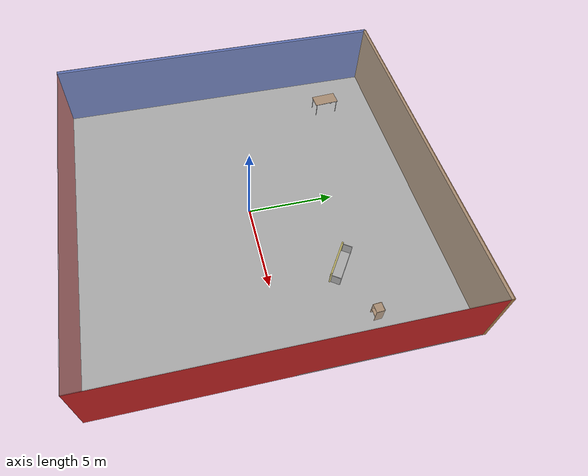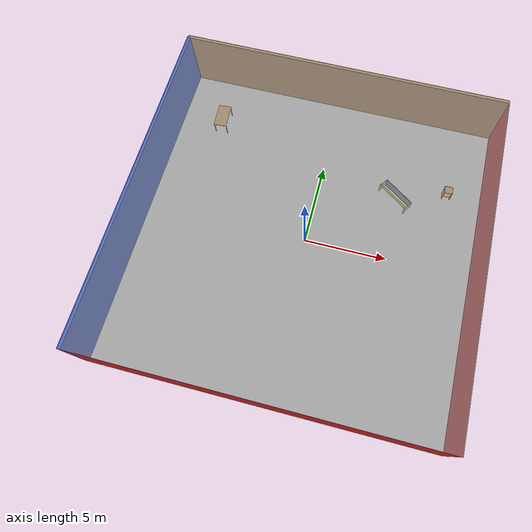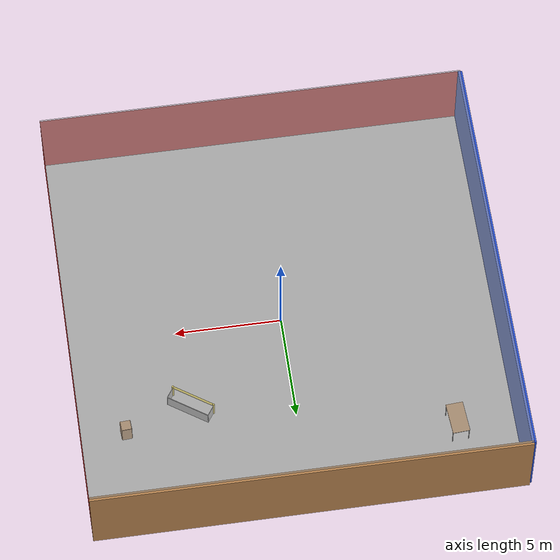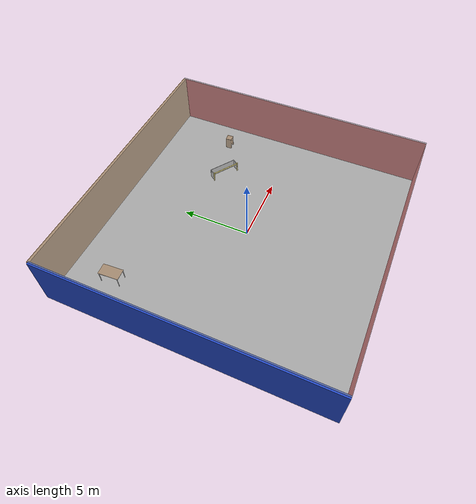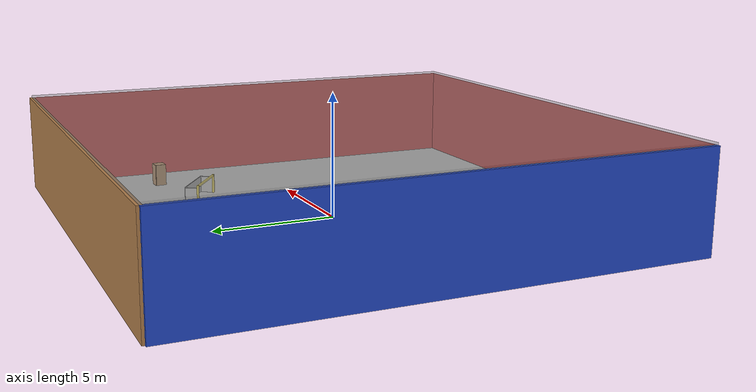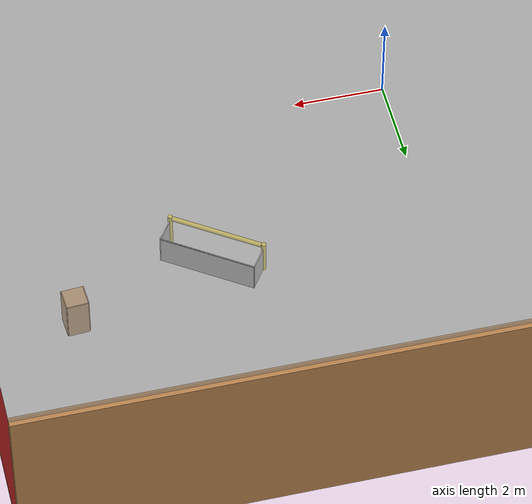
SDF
<sdf version="1.4">
 <world name="default">
  <physics type="ode">
   <max_step_size>0.001</max_step_size>
   <real_time_factor>1</real_time_factor>
   <real_time_update_rate>1000</real_time_update_rate>
   <gravity>0 0 -9.8</gravity>
  </physics>
  <scene><ambient>0.4 0.4 0.4 1</ambient><background>0.7 0.7 0.7 1</background><shadows>1</shadows></scene>
  <model name="Surrounding">
   <static>1</static>
   <link name="Ceiling">
    <collision name="Ceiling_Collision"><geometry><box><size>20 20 0.1</size></box></geometry></collision>
    <visual name="Ceiling_Visual">
     <geometry><box><size>20 20 0.1</size></box></geometry>
     <material>
      <script><uri>file://media/materials/scripts/gazebo.material</uri><name>Gazebo/GreyTransparent</name></script>
     </material>
    </visual>
    <pose>0 0 4.05 0 0 0</pose>
   </link>
   <link name="Wall_South">
    <collision name="Wall_South_Collision">
     <geometry><box><size>20 0 4</size></box></geometry>
     <pose>0 0 2 0 -0 0</pose>
    </collision>
    <visual name="Wall_South_Visual">
     <pose>0 0 2 0 -0 0</pose>
     <geometry><box><size>20 0 4</size></box></geometry>
     <material>
      <script><uri>file://media/materials/scripts/gazebo.material</uri><name>Gazebo/RedGlow</name></script>
     </material>
    </visual>
    <velocity_decay><linear>0</linear><angular>0</angular></velocity_decay>
    <pose>0 -10 0 0 -0 0</pose>
   </link>
   <link name="Wall_East">
    <collision name="Wall_21_Collision">
     <geometry><box><size>20 0 4</size></box></geometry>
     <pose>0 0 2 0 -0 0</pose>
    </collision>
    <visual name="Wall_21_Visual">
     <pose>0 0 2 0 -0 0</pose>
     <geometry><box><size>20 0 4</size></box></geometry>
     <material>
      <script><uri>file://media/materials/scripts/gazebo.material</uri><name>Gazebo/Red</name></script>
     </material>
    </visual>
    <velocity_decay><linear>0</linear><angular>0</angular></velocity_decay>
    <pose>10 0 0 0 -0 1.5708</pose>
   </link>
   <link name="Wall_North">
    <collision name="Wall_22_Collision">
     <geometry><box><size>20 0.2 4</size></box></geometry>
     <pose>0 0 2 0 -0 0</pose>
    </collision>
    <visual name="Wall_22_Visual">
     <pose>0 0 2 0 -0 0</pose>
     <geometry><box><size>20 0.2 4</size></box></geometry>
     <material>
      <script><uri>file://media/materials/scripts/gazebo.material</uri><name>Gazebo/Wood</name></script>
     </material>
    </visual>
    <velocity_decay><linear>0</linear><angular>0</angular></velocity_decay>
    <pose>0 10 0 0 -0 0</pose>
   </link>
   <link name="Wall_West">
    <collision name="Wall_23_Collision">
     <geometry><box><size>20 0.2 4</size></box></geometry>
     <pose>0 0 2 0 -0 0</pose>
    </collision>
    <visual name="Wall_23_Visual">
     <pose>0 0 2 0 -0 0</pose>
     <geometry><box><size>20 0.2 4</size></box></geometry>
     <material>
      <script><uri>file://media/materials/scripts/gazebo.material</uri><name>Gazebo/BlueGlow</name></script>
     </material>
    </visual>
    <velocity_decay><linear>0</linear><angular>0</angular></velocity_decay>
    <pose>-10 0 0 0 0 -1.5708</pose>
   </link>
   <link name="Ground_link">
    <collision name="collision">
     <pose>0 0 .05 0 -0 0</pose>
     <geometry><box><size>20 20 0.1</size></box></geometry>
    </collision>
    <visual name="visual">
     <pose>0 0 .05 0 -0 0</pose>
     <geometry><box><size>20 20 0.1</size></box></geometry>
     <material>
      <script><uri>file://media/materials/scripts/gazebo.material</uri><name>Gazebo/PioneerBody</name></script>
     </material>
    </visual>
   </link>
   <static>1</static>
  </model>
  <spherical_coordinates>
   <surface_model>EARTH_WGS84</surface_model>
   <latitude_deg>0</latitude_deg>
   <longitude_deg>0</longitude_deg>
   <elevation>0</elevation>
   <heading_deg>0</heading_deg>
  </spherical_coordinates>
  <light name="lightball_0" type="diffuse">
   <diffuse>0.8 0.8 0.8 1</diffuse>
   <specular>0.2 0.2 0.2 1</specular>
   <attenuation>
    <range>100</range>
    <constant>0.7</constant>
    <linear>0.01</linear>
    <quadratic>0.001</quadratic>
   </attenuation>
   <direction>-0.5 0.1 -0.9</direction>
   <pose>-0.0384410282205 -3.95610316073 3.29518596354 0 0 0</pose>
  </light>
  <light name="lightball_1" type="diffuse">
   <diffuse>0.8 0.8 0.8 1</diffuse>
   <specular>0.2 0.2 0.2 1</specular>
   <attenuation>
    <range>100</range>
    <constant>0.7</constant>
    <linear>0.01</linear>
    <quadratic>0.001</quadratic>
   </attenuation>
   <direction>-0.5 0.1 -0.9</direction>
   <pose>5.20833532179 -0.681886616288 2.42050134872 0 0 0</pose>
  </light>
  <light name="lightball_2" type="diffuse">
   <diffuse>0.8 0.8 0.8 1</diffuse>
   <specular>0.2 0.2 0.2 1</specular>
   <attenuation>
    <range>100</range>
    <constant>0.7</constant>
    <linear>0.01</linear>
    <quadratic>0.001</quadratic>
   </attenuation>
   <direction>-0.5 0.1 -0.9</direction>
   <pose>-3.26051507974 5.2485366578 2.021896704 0 0 0</pose>
  </light>
  <light name="lightball_3" type="diffuse">
   <diffuse>0.8 0.8 0.8 1</diffuse>
   <specular>0.2 0.2 0.2 1</specular>
   <attenuation>
    <range>100</range>
    <constant>0.7</constant>
    <linear>0.01</linear>
    <quadratic>0.001</quadratic>
   </attenuation>
   <direction>-0.5 0.1 -0.9</direction>
   <pose>-9.53423659473 -2.12065236867 3.89854217612 0 0 0</pose>
  </light>
  <light name="lightball_4" type="diffuse">
   <diffuse>0.8 0.8 0.8 1</diffuse>
   <specular>0.2 0.2 0.2 1</specular>
   <attenuation>
    <range>100</range>
    <constant>0.7</constant>
    <linear>0.01</linear>
    <quadratic>0.001</quadratic>
   </attenuation>
   <direction>-0.5 0.1 -0.9</direction>
   <pose>-5.18713716807 -3.2346045519 2.45844824913 0 0 0</pose>
  </light>
  <light name="lightball_5" type="diffuse">
   <diffuse>0.8 0.8 0.8 1</diffuse>
   <specular>0.2 0.2 0.2 1</specular>
   <attenuation>
    <range>100</range>
    <constant>0.7</constant>
    <linear>0.01</linear>
    <quadratic>0.001</quadratic>
   </attenuation>
   <direction>-0.5 0.1 -0.9</direction>
   <pose>6.79063838321 -6.26003935518 1.74707428654 0 0 0</pose>
  </light>
  <light name="lightball_6" type="diffuse">
   <diffuse>0.8 0.8 0.8 1</diffuse>
   <specular>0.2 0.2 0.2 1</specular>
   <attenuation>
    <range>100</range>
    <constant>0.7</constant>
    <linear>0.01</linear>
    <quadratic>0.001</quadratic>
   </attenuation>
   <direction>-0.5 0.1 -0.9</direction>
   <pose>0.423856207942 -9.81565628707 0.837063498963 0 0 0</pose>
  </light>
  <include><uri>model://table</uri><pose>-7.21470649467 6.73292833523 0 0 0 1.63685578849</pose></include>
  <include>
   <uri>model://robocup_3Dsim_goal</uri>
   <pose>4.61795787505 3.82322801519 0 0 0 0.969136539666</pose>
  </include>
  <include><uri>model://cabinet</uri><pose>7.86708829931 4.98057237676 0 0 0 1.63543428462</pose></include>
 </world>
</sdf>

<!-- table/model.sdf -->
<sdf version="1.5">
  <model name="table">
    <static>true</static>
    <link name="link">
      <collision name="surface">
        <pose>0 0 1.0 0 0 0</pose>
        <geometry>
          <box>
            <size>1.5 0.8 0.03</size>
          </box>
        </geometry>
        <surface>
          <friction>
            <ode>
              <mu>0.6</mu>
              <mu2>0.6</mu2>
            </ode>
          </friction>
        </surface>
      </collision>
      <visual name="visual1">
        <pose>0 0 1.0 0 0 0</pose>
        <geometry>
          <box>
            <size>1.5 0.8 0.03</size>
          </box>
        </geometry>
        <material>
          <script>
            <uri>model://media/materials/scripts/gazebo.material</uri>
            <name>Gazebo/Wood</name>
          </script>
        </material>
      </visual>
      <collision name="front_left_leg">
        <pose>0.68 0.38 0.5 0 0 0</pose>
        <geometry>
          <cylinder>
            <radius>0.02</radius>
            <length>1.0</length>
          </cylinder>
        </geometry>
      </collision>
      <visual name="front_left_leg">
        <pose>0.68 0.38 0.5 0 0 0</pose>
        <geometry>
          <cylinder>
            <radius>0.02</radius>
            <length>1.0</length>
          </cylinder>
        </geometry>
        <material>
          <script>
            <uri>model://media/materials/scripts/gazebo.material</uri>
            <name>Gazebo/Grey</name>
          </script>
        </material>
      </visual>
      <collision name="front_right_leg">
        <pose>0.68 -0.38 0.5 0 0 0</pose>
        <geometry>
          <cylinder>
            <radius>0.02</radius>
            <length>1.0</length>
          </cylinder>
        </geometry>
      </collision>
      <visual name="front_right_leg">
        <pose>0.68 -0.38 0.5 0 0 0</pose>
        <geometry>
          <cylinder>
            <radius>0.02</radius>
            <length>1.0</length>
          </cylinder>
        </geometry>
        <material>
          <script>
            <uri>model://media/materials/scripts/gazebo.material</uri>
            <name>Gazebo/Grey</name>
          </script>
        </material>
      </visual>
      <collision name="back_right_leg">
        <pose>-0.68 -0.38 0.5 0 0 0</pose>
        <geometry>
          <cylinder>
            <radius>0.02</radius>
            <length>1.0</length>
          </cylinder>
        </geometry>
      </collision>
      <visual name="back_right_leg">
        <pose>-0.68 -0.38 0.5 0 0 0</pose>
        <geometry>
          <cylinder>
            <radius>0.02</radius>
            <length>1.0</length>
          </cylinder>
        </geometry>
        <material>
          <script>
            <uri>model://media/materials/scripts/gazebo.material</uri>
            <name>Gazebo/Grey</name>
          </script>
        </material>
      </visual>
      <collision name="back_left_leg">
        <pose>-0.68 0.38 0.5 0 0 0</pose>
        <geometry>
          <cylinder>
            <radius>0.02</radius>
            <length>1.0</length>
          </cylinder>
        </geometry>
      </collision>
      <visual name="back_left_leg">
        <pose>-0.68 0.38 0.5 0 0 0</pose>
        <geometry>
          <cylinder>
            <radius>0.02</radius>
            <length>1.0</length>
          </cylinder>
        </geometry>
        <material>
          <script>
            <uri>model://media/materials/scripts/gazebo.material</uri>
            <name>Gazebo/Grey</name>
          </script>
        </material>
      </visual>
    </link>
  </model>
</sdf>

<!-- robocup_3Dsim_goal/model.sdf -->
<sdf version="1.5">
  <model name="robocup_3d_goal">
    <static>true</static>
    <link name="left_post">
      <pose>0 1.05 0.45 0 0 0</pose>
      <collision name="collision">
        <geometry>
          <cylinder>
            <radius>0.05</radius>
            <length>0.9</length>
          </cylinder>
        </geometry>
      </collision>
      <visual name="visual">
        <geometry>
          <cylinder>
            <radius>0.05</radius>
            <length>0.9</length>
          </cylinder>
        </geometry>
        <material>
          <script>
            <uri>file://media/materials/scripts/gazebo.material</uri>
            <name>Gazebo/ZincYellow</name>
          </script>
        </material>
      </visual>
    </link>
    <link name="left_support_horiz_lower">
      <pose>0.30 1.05 0.01 0 0 0</pose>
      <collision name="collision">
        <geometry>
          <box>
            <size>0.50 0.02 0.02</size>
          </box>
        </geometry>
      </collision>
      <visual name="visual">
        <geometry>
          <box>
            <size>0.50 0.02 0.02</size>
          </box>
        </geometry>
        <material>
          <script>
            <uri>file://media/materials/scripts/gazebo.material</uri>
            <name>Gazebo/White</name>
          </script>
        </material>
      </visual>
    </link>
    <link name="left_support_horiz_upper">
      <pose>0.30 1.05 0.79 0 0 0</pose>
      <collision name="collision">
        <geometry>
          <box>
            <size>0.50 0.02 0.02</size>
          </box>
        </geometry>
      </collision>
      <visual name="visual">
        <geometry>
          <box>
            <size>0.50 0.02 0.02</size>
          </box>
        </geometry>
        <material>
          <script>
            <uri>file://media/materials/scripts/gazebo.material</uri>
            <name>Gazebo/White</name>
          </script>
        </material>
      </visual>
    </link>
    <link name="left_support_vertical">
      <pose>0.56 1.05 0.4 0 1.5708 0</pose>
      <collision name="collision">
        <geometry>
          <box>
            <size>0.80 0.02 0.02</size>
          </box>
        </geometry>
      </collision>
      <visual name="visual">
        <geometry>
          <box>
            <size>0.80 0.02 0.02</size>
          </box>
        </geometry>
        <material>
          <script>
            <uri>file://media/materials/scripts/gazebo.material</uri>
            <name>Gazebo/White</name>
          </script>
        </material>
      </visual>
    </link>
    <link name="right_support_horiz_lower">
      <pose>0.30 -1.05 0.01 0 0 0</pose>
      <collision name="collision">
        <geometry>
          <box>
            <size>0.50 0.02 0.02</size>
          </box>
        </geometry>
      </collision>
      <visual name="visual">
        <geometry>
          <box>
            <size>0.50 0.02 0.02</size>
          </box>
        </geometry>
        <material>
          <script>
            <uri>file://media/materials/scripts/gazebo.material</uri>
            <name>Gazebo/White</name>
          </script>
        </material>
      </visual>
    </link>
    <link name="right_support_horiz_upper">
      <pose>0.30 -1.05 0.79 0 0 0</pose>
      <collision name="collision">
        <geometry>
          <box>
            <size>0.50 0.02 0.02</size>
          </box>
        </geometry>
      </collision>
      <visual name="visual">
        <geometry>
          <box>
            <size>0.50 0.02 0.02</size>
          </box>
        </geometry>
        <material>
          <script>
            <uri>file://media/materials/scripts/gazebo.material</uri>
            <name>Gazebo/White</name>
          </script>
        </material>
      </visual>
    </link>
    <link name="right_support_vertical">
      <pose>0.56 -1.05 0.4 0 1.5708 0</pose>
      <collision name="collision">
        <geometry>
          <box>
            <size>0.80 0.02 0.02</size>
          </box>
        </geometry>
      </collision>
      <visual name="visual">
        <geometry>
          <box>
            <size>0.80 0.02 0.02</size>
          </box>
        </geometry>
        <material>
          <script>
            <uri>file://media/materials/scripts/gazebo.material</uri>
            <name>Gazebo/White</name>
          </script>
        </material>
      </visual>
    </link>
    <link name="center_support_horiz_lower">
      <pose>0.56 0 0.01 0 1.5708 0</pose>
      <collision name="collision">
        <geometry>
          <box>
            <size>0.02 2.08 0.02</size>
          </box>
        </geometry>
      </collision>
      <visual name="visual">
        <geometry>
          <box>
            <size>0.02 2.08 0.02</size>
          </box>
        </geometry>
        <material>
          <script>
            <uri>file://media/materials/scripts/gazebo.material</uri>
            <name>Gazebo/White</name>
          </script>
        </material>
      </visual>
    </link>
    <link name="center_support_horiz_upper">
      <pose>0.56 0 0.79 0 1.5708 0</pose>
      <collision name="collision">
        <geometry>
          <box>
            <size>0.02 2.08 0.02</size>
          </box>
        </geometry>
      </collision>
      <visual name="visual">
        <geometry>
          <box>
            <size>0.02 2.08 0.02</size>
          </box>
        </geometry>
        <material>
          <script>
            <uri>file://media/materials/scripts/gazebo.material</uri>
            <name>Gazebo/White</name>
          </script>
        </material>
      </visual>
    </link>
    <link name="right_post">
      <pose>0 -1.05 0.45 0 0 0</pose>
      <collision name="collision">
        <geometry>
          <cylinder>
            <radius>0.05</radius>
            <length>0.9</length>
          </cylinder>
        </geometry>
      </collision>
      <visual name="visual">
        <geometry>
          <cylinder>
            <radius>0.05</radius>
            <length>0.9</length>
          </cylinder>
        </geometry>
        <material>
          <script>
            <uri>file://media/materials/scripts/gazebo.material</uri>
            <name>Gazebo/ZincYellow</name>
          </script>
        </material>
      </visual>
    </link>
    <link name="crossbar">
      <pose>0 0 0.85 1.57 1.57 0</pose>
      <collision name="collision">
        <geometry>
          <cylinder>
            <radius>0.05</radius>
            <length>2.0</length>
          </cylinder>
        </geometry>
      </collision>
      <visual name="visual">
        <geometry>
          <cylinder>
            <radius>0.05</radius>
            <length>2.0</length>
          </cylinder>
        </geometry>
        <material>
          <script>
            <uri>file://media/materials/scripts/gazebo.material</uri>
            <name>Gazebo/ZincYellow</name>
          </script>
        </material>
      </visual>
    </link>
    <link name="center_net">
      <pose>0.56 0 0.40 0 0 0</pose>
      <collision name="collision">
        <geometry>
          <box>
            <size>0.01 2.1 0.80</size>
          </box>
        </geometry>
      </collision>
      <visual name="visual">
        <geometry>
          <box>
            <size>0.01 2.1 0.80</size>
          </box>
        </geometry>
        <material>
          <script>
            <uri>model://../model_source/models/robocup09_spl_field/materials/scripts/</uri>
            <uri>model://../model_source/models/robocup09_spl_field/materials/textures/</uri>
            <name>RoboCup/Net</name>
          </script>
        </material>
      </visual>
    </link>
    <link name="left_net">
      <pose>0.30 1.05 0.40 0 0 0</pose>
      <collision name="collision">
        <geometry>
          <box>
            <size>0.50 0.01 0.76</size>
          </box>
        </geometry>
      </collision>
      <visual name="visual">
        <geometry>
          <box>
            <size>0.50 0.01 0.76</size>
          </box>
        </geometry>
        <material>
          <script>
            <uri>model://../model_source/models/robocup09_spl_field/materials/scripts/</uri>
            <uri>model://../model_source/models/robocup09_spl_field/materials/textures/</uri>
            <name>RoboCup/Net</name>
          </script>
        </material>
      </visual>
    </link>
    <link name="right_net">
      <pose>0.30 -1.05 0.40 0 0 0</pose>
      <collision name="collision">
        <geometry>
          <box>
            <size>0.50 0.01 0.76</size>
          </box>
        </geometry>
      </collision>
      <visual name="visual">
        <geometry>
          <box>
            <size>0.50 0.01 0.76</size>
          </box>
        </geometry>
        <material>
          <script>
            <uri>model://../model_source/models/robocup09_spl_field/materials/scripts/</uri>
            <uri>model://../model_source/models/robocup09_spl_field/materials/textures/</uri>
            <name>RoboCup/Net</name>
          </script>
        </material>
      </visual>
    </link>
  </model>
</sdf>

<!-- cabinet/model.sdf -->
<sdf version="1.5">
  <model name="cabinet">
    <static>true</static>
    <link name="cabinet_bottom_plate">
      <inertial>
        <pose>0 0 -1 0 0 0</pose>
        <inertia>
          <ixx>2.050000</ixx>
          <ixy>0</ixy>
          <ixz>0</ixz>
          <iyy>2.050000</iyy>
          <iyz>0</iyz>
          <izz>2.050000</izz>
        </inertia>
        <mass>25.000000</mass>
      </inertial>
      <collision name="cabinet_bottom_plate_geom">
        <pose>0 0 0.010000 0 0 0</pose>
        <geometry>
          <box>
            <size>0.450000 0.450000 0.020000</size>
          </box>
        </geometry>
      </collision>
      <visual name="cabinet_bottom_plate_geom_visual">
        <pose>0 0 0.010000 0 0 0</pose>
        <geometry>
          <box>
            <size>0.450000 0.450000 0.020000</size>
          </box>
        </geometry>
        <material>
          <script>
            <uri>model://media/materials/scripts/gazebo.material</uri>
            <name>Gazebo/Wood</name>
          </script>
        </material>
      </visual>
      <collision name="cabinet_bottom_plate_geom_cabinet_back_plate">
        <pose>0.235000 0 0.510000 0 0 0</pose>
        <geometry>
          <box>
            <size>0.020000 0.450000 1.020000</size>
          </box>
        </geometry>
      </collision>
      <visual name="cabinet_bottom_plate_geom_cabinet_back_plate_visual">
        <pose>0.235000 0 0.510000 0 0 0</pose>
        <geometry>
          <box>
            <size>0.020000 0.450000 1.020000</size>
          </box>
        </geometry>
        <material>
          <script>
            <uri>model://media/materials/scripts/gazebo.material</uri>
            <name>Gazebo/Wood</name>
          </script>
        </material>
      </visual>
      <collision name="cabinet_bottom_plate_geom_cabinet_left_plate">
        <pose>0 0.235000 0.510000 0 0 0</pose>
        <geometry>
          <box>
            <size>0.450000 0.020000 1.020000</size>
          </box>
        </geometry>
      </collision>
      <visual name="cabinet_bottom_plate_geom_cabinet_left_plate_visual">
        <pose>0 0.235000 0.510000 0 0 0</pose>
        <geometry>
          <box>
            <size>0.450000 0.020000 1.020000</size>
          </box>
        </geometry>
        <material>
          <script>
            <uri>model://media/materials/scripts/gazebo.material</uri>
            <name>Gazebo/Wood</name>
          </script>
        </material>
      </visual>
      <collision name="cabinet_bottom_plate_geom_cabinet_middle_plate">
        <pose>0 0 0.510000 0 0 0</pose>
        <geometry>
          <box>
            <size>0.450000 0.450000 0.020000</size>
          </box>
        </geometry>
      </collision>
      <visual name="cabinet_bottom_plate_geom_cabinet_middle_plate_visual">
        <pose>0 0 0.510000 0 0 0</pose>
        <geometry>
          <box>
            <size>0.450000 0.450000 0.020000</size>
          </box>
        </geometry>
        <material>
          <script>
            <uri>model://media/materials/scripts/gazebo.material</uri>
            <name>Gazebo/Wood</name>
          </script>
        </material>
      </visual>
      <collision name="cabinet_bottom_plate_geom_cabinet_right_plate">
        <pose>0 -0.235000 0.510000 0 0 0</pose>
        <geometry>
          <box>
            <size>0.450000 0.020000 1.020000</size>
          </box>
        </geometry>
      </collision>
      <visual name="cabinet_bottom_plate_geom_cabinet_right_plate_visual">
        <pose>0 -0.235000 0.510000 0 0 0</pose>
        <geometry>
          <box>
            <size>0.450000 0.020000 1.020000</size>
          </box>
        </geometry>
        <material>
          <script>
            <uri>model://media/materials/scripts/gazebo.material</uri>
            <name>Gazebo/Wood</name>
          </script>
        </material>
      </visual>
      <collision name="cabinet_bottom_plate_geom_cabinet_top_plate">
        <pose>0 0 1.010000 0 0 0</pose>
        <geometry>
          <box>
            <size>0.450000 0.450000 0.020000</size>
          </box>
        </geometry>
      </collision>
      <visual name="cabinet_bottom_plate_geom_cabinet_top_plate_visual">
        <pose>0 0 1.010000 0 0 0</pose>
        <geometry>
          <box>
            <size>0.450000 0.450000 0.020000</size>
          </box>
        </geometry>
        <material>
          <script>
            <uri>model://media/materials/scripts/gazebo.material</uri>
            <name>Gazebo/Wood</name>
          </script>
        </material>
      </visual>
    </link>
  </model>
</sdf>
